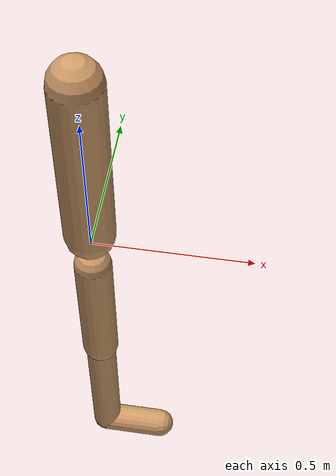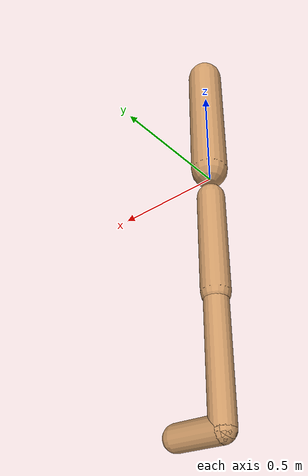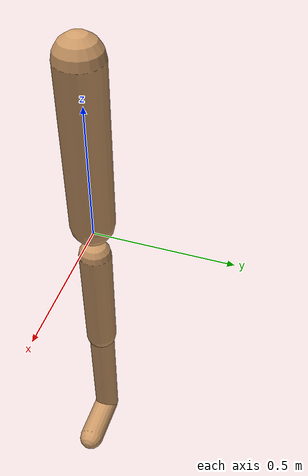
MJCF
<mujoco model="walker2d">
  <compiler angle="degree" inertiafromgeom="true"/>
  <default>
    <joint armature="0.01" damping=".1" limited="true"/>
    <geom conaffinity="0" condim="3" contype="1" density="1000" friction="0.8 .1 .1" rgba="0.8 0.6 .4 1"/>
  </default>
  <option integrator="RK4" iterations="50" solver="PGS" timestep="0.002" />
  <worldbody>
    <body name="pelvis" pos="0 0 0">
      <joint armature="0" axis="1 0 0" damping="0" limited="false" name="ignorex" pos="0 0 0" stiffness="0" type="slide"/>
      <joint armature="0" axis="0 0 1" damping="0" limited="false" name="ignorez" pos="0 0 0" stiffness="0" type="slide"/>
      <joint armature="0" axis="0 1 0" damping="0" limited="false" name="ignorey" pos="0 0 0" stiffness="0" type="hinge"/>
      <body name="torso" pos="0 0 0.05">
        <joint axis="0 1 0" name="torso_joint" pos="0 0 0" range="-5 20" type="hinge"/>
        <geom fromto="0 0 0 0 0 0.6" name="torso_geom" size="0.08" type="capsule"/>
      </body>
      <body name="right_thigh" pos="0 0 -0.1">
        <joint axis="0 1 0" name="right_thigh_joint" pos="0 0 0" range="-90 40" type="hinge"/>
        <geom fromto="0 0 0 0 0 -0.45" name="right_thigh_geom" size="0.06" type="capsule"/>
        <body name="right_leg" pos="0 0 -0.45">
          <joint axis="0 1 0" name="right_leg_joint" pos="0 0 0" range="0 150" type="hinge"/>
          <geom fromto="0 0 0 0 0 -0.5" name="right_leg_geom" size="0.05" type="capsule"/>
          <body name="right_foot" pos="0 0 -0.5">
            <joint axis="0 1 0" name="right_foot_joint" pos="0 0 0" range="-20 20" type="hinge"/>
            <geom fromto="0 0 0 0.2 0 0" name="right_foot_geom" size="0.05" type="capsule"/>
          </body>
        </body>
      </body>

      <body name="left_thigh" pos="0 0 -0.1">
        <joint axis="0 1 0" name="left_thigh_joint" pos="0 0 0" range="-90 40" type="hinge"/>
        <geom fromto="0 0 0 0 0 -0.45" name="left_thigh_geom" size="0.06" type="capsule" rgba="0.46 0.16 0.4 1"/>
        <body name="left_leg" pos="0 0 -0.45">
          <joint axis="0 1 0" name="left_leg_joint" pos="0 0 0" range="0 150" type="hinge"/>
          <geom fromto="0 0 0 0 0 -0.5" name="left_leg_geom" size="0.05" type="capsule" rgba="0.46 0.16 0.4 1"/>
          <body name="left_foot" pos="0 0 -0.5">
            <joint axis="0 1 0" name="left_foot_joint" pos="0 0 0" range="-20 20" type="hinge"/>
            <geom fromto="0 0 0 0.2 0 0" name="left_foot_geom" size="0.05" type="capsule" rgba="0.46 0.16 0.4 1"/>
          </body>
        </body>
      </body>
    </body>
  </worldbody>
</mujoco>
